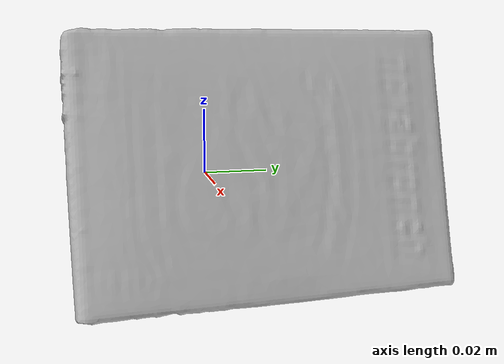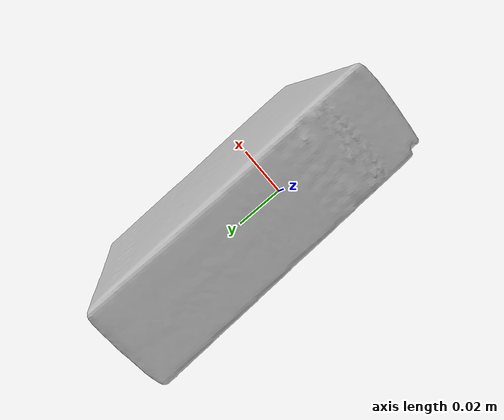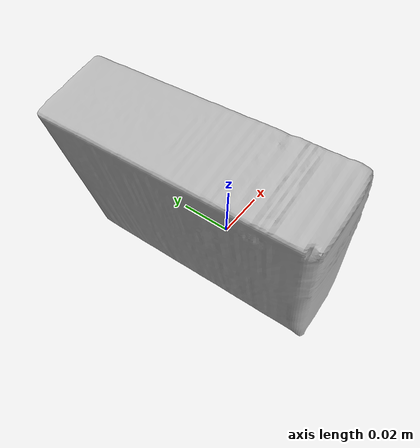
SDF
<?xml version='1.0'?>
<sdf version="1.4">
  <model name="CoughDropsHoney">
    <static>false</static>
    <link name="link">
      <inertial>
        <pose>0.005905847692208505 0.015960472730577296 0.001316147028921254 1.5612633325829164 0.2412221790281769 -3.1054588775974103</pose>
        <mass>0.03336198392555487</mass>
        <inertia>
          <ixx>5.340943247489032e-05</ixx>
          <ixy>4.800084373225459e-21</ixy>
          <ixz>2.468994336735456e-21</ixz>
          <iyy>3.911127140167201e-05</iyy>
          <iyz>-8.367932108778417e-21</iyz>
          <izz>2.1543198021804392e-05</izz>
        </inertia>
      </inertial>
      <collision name="collision">
        <geometry>
          <mesh>
            <!-- Use a downsampled mesh for collisions -->
            <uri>model:///CoughDropsHoney/CoughDropsHoney_250_collision.obj</uri>
	        </mesh>
        </geometry>
        <surface>
      </surface>
      </collision>
      <visual name="visual">
        <geometry>
          <mesh>
            <uri>model:///CoughDropsHoney/CoughDropsHoney_25k_tex.obj</uri>
	        </mesh>
        </geometry>
        <material>
          <script>
            <uri>model:///CoughDropsHoney/CoughDropsHoney.material</uri>
            <name>CoughDropsHoney</name>
          </script>
        </material>
      </visual>
    </link>
  </model>
</sdf>
